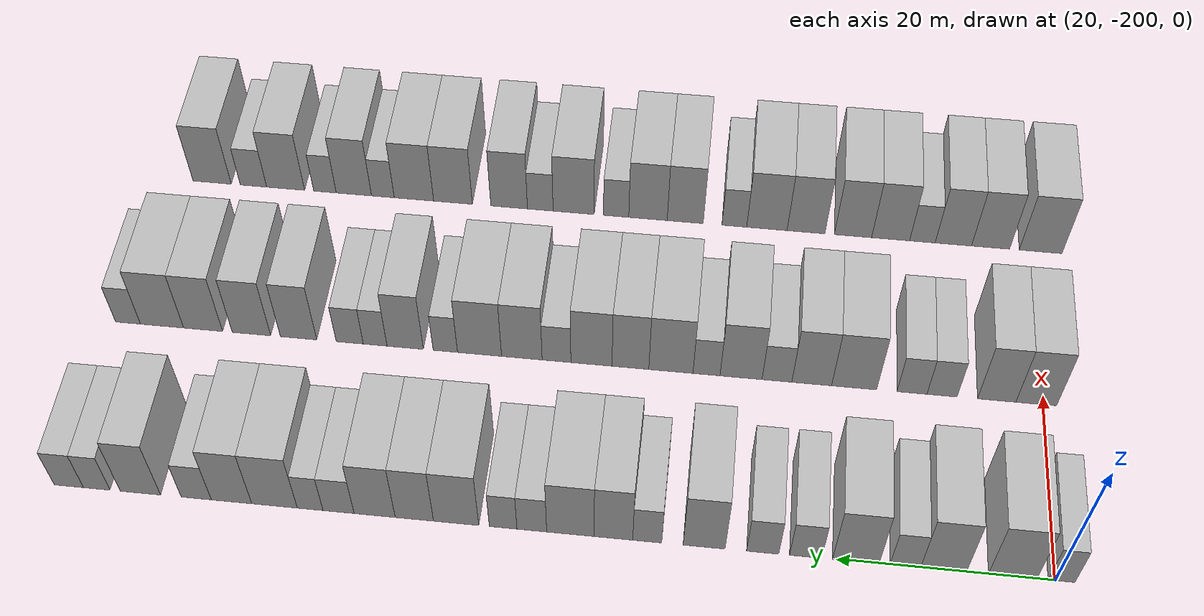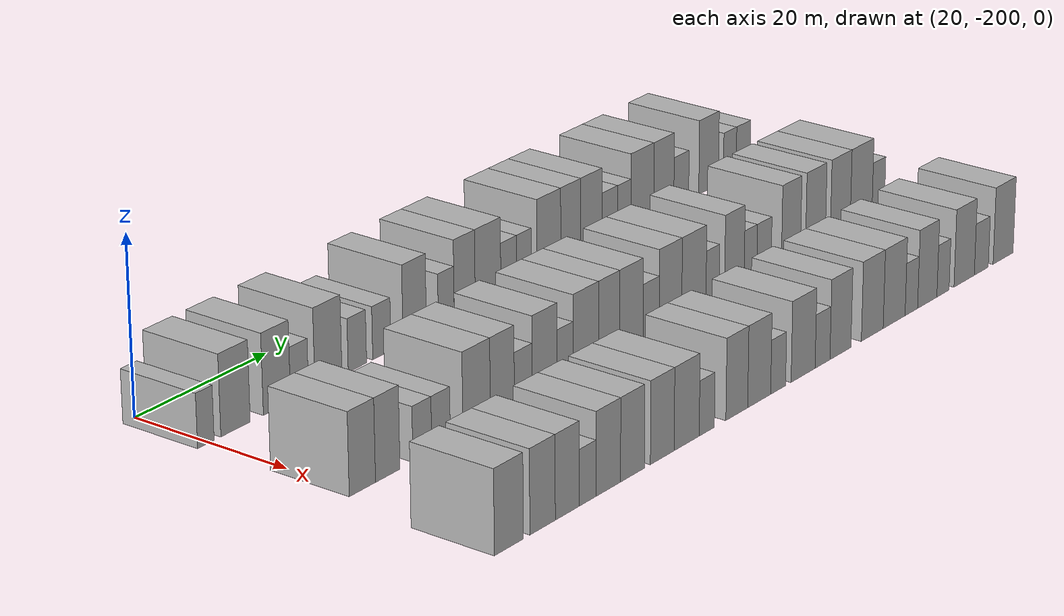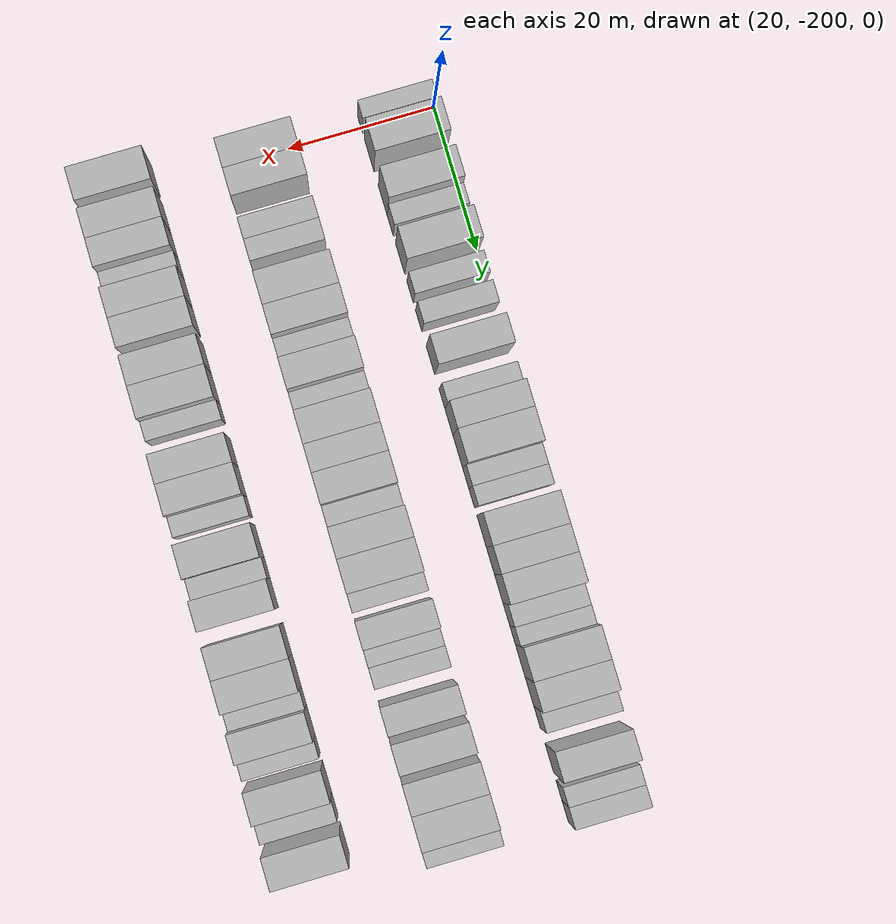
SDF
<sdf version="1.6">
 <world name="default">
  <model name="building_34">
   <static>1</static>
   <pose>25.0000 -200.5659 0 0.000000 0.000000 0.000000</pose>
   <link name="link">
    <pose>0 0 3.00 0 0 0</pose>
    <collision name="collision"><geometry><box><size>10.0000 2.4475 6.0000</size></box></geometry></collision>
    <visual name="visual">
     <cast_shadows>0</cast_shadows>
     <geometry><box><size>10.0000 2.4475 6.0000</size></box></geometry>
     <material>
      <script>
       <uri>model://HANNAS_wall/materials/scripts</uri>
       <uri>model://HANNAS_wall/materials/textures</uri>
       <name>vrc/HANNAS_wall</name>
      </script>
     </material>
    </visual>
   </link>
  </model>
  <model name="building_35">
   <static>1</static>
   <pose>25.0000 -196.1307 0 0.000000 0.000000 0.000000</pose>
   <link name="link">
    <pose>0 0 4.50 0 0 0</pose>
    <collision name="collision"><geometry><box><size>10.0000 4.4228 9.0000</size></box></geometry></collision>
    <visual name="visual">
     <cast_shadows>0</cast_shadows>
     <geometry><box><size>10.0000 4.4228 9.0000</size></box></geometry>
     <material>
      <script>
       <uri>model://HANNAS_wall/materials/scripts</uri>
       <uri>model://HANNAS_wall/materials/textures</uri>
       <name>vrc/HANNAS_wall</name>
      </script>
     </material>
    </visual>
   </link>
  </model>
  <model name="building_36">
   <static>1</static>
   <pose>25.0000 -189.8251 0 0.000000 0.000000 0.000000</pose>
   <link name="link">
    <pose>0 0 4.50 0 0 0</pose>
    <collision name="collision"><geometry><box><size>10.0000 4.1883 9.0000</size></box></geometry></collision>
    <visual name="visual">
     <cast_shadows>0</cast_shadows>
     <geometry><box><size>10.0000 4.1883 9.0000</size></box></geometry>
     <material>
      <script>
       <uri>model://HANNAS_wall/materials/scripts</uri>
       <uri>model://HANNAS_wall/materials/textures</uri>
       <name>vrc/HANNAS_wall</name>
      </script>
     </material>
    </visual>
   </link>
  </model>
  <model name="building_37">
   <static>1</static>
   <pose>25.0000 -186.3270 0 0.000000 0.000000 0.000000</pose>
   <link name="link">
    <pose>0 0 3.00 0 0 0</pose>
    <collision name="collision"><geometry><box><size>10.0000 2.8080 6.0000</size></box></geometry></collision>
    <visual name="visual">
     <cast_shadows>0</cast_shadows>
     <geometry><box><size>10.0000 2.8080 6.0000</size></box></geometry>
     <material>
      <script>
       <uri>model://HANNAS_wall/materials/scripts</uri>
       <uri>model://HANNAS_wall/materials/textures</uri>
       <name>vrc/HANNAS_wall</name>
      </script>
     </material>
    </visual>
   </link>
  </model>
  <model name="building_38">
   <static>1</static>
   <pose>25.0000 -181.7775 0 0.000000 0.000000 0.000000</pose>
   <link name="link">
    <pose>0 0 4.50 0 0 0</pose>
    <collision name="collision"><geometry><box><size>10.0000 4.2909 9.0000</size></box></geometry></collision>
    <visual name="visual">
     <cast_shadows>0</cast_shadows>
     <geometry><box><size>10.0000 4.2909 9.0000</size></box></geometry>
     <material>
      <script>
       <uri>model://HANNAS_wall/materials/scripts</uri>
       <uri>model://HANNAS_wall/materials/textures</uri>
       <name>vrc/HANNAS_wall</name>
      </script>
     </material>
    </visual>
   </link>
  </model>
  <model name="building_39">
   <static>1</static>
   <pose>25.0000 -177.1519 0 0.000000 0.000000 0.000000</pose>
   <link name="link">
    <pose>0 0 3.00 0 0 0</pose>
    <collision name="collision"><geometry><box><size>10.0000 2.9604 6.0000</size></box></geometry></collision>
    <visual name="visual">
     <cast_shadows>0</cast_shadows>
     <geometry><box><size>10.0000 2.9604 6.0000</size></box></geometry>
     <material>
      <script>
       <uri>model://HANNAS_wall/materials/scripts</uri>
       <uri>model://HANNAS_wall/materials/textures</uri>
       <name>vrc/HANNAS_wall</name>
      </script>
     </material>
    </visual>
   </link>
  </model>
  <model name="building_40">
   <static>1</static>
   <pose>25.0000 -173.1831 0 0.000000 0.000000 0.000000</pose>
   <link name="link">
    <pose>0 0 3.00 0 0 0</pose>
    <collision name="collision"><geometry><box><size>10.0000 2.9773 6.0000</size></box></geometry></collision>
    <visual name="visual">
     <cast_shadows>0</cast_shadows>
     <geometry><box><size>10.0000 2.9773 6.0000</size></box></geometry>
     <material>
      <script>
       <uri>model://HANNAS_wall/materials/scripts</uri>
       <uri>model://HANNAS_wall/materials/textures</uri>
       <name>vrc/HANNAS_wall</name>
      </script>
     </material>
    </visual>
   </link>
  </model>
  <model name="building_41">
   <static>1</static>
   <pose>25.0000 -167.7457 0 0.000000 0.000000 0.000000</pose>
   <link name="link">
    <pose>0 0 4.50 0 0 0</pose>
    <collision name="collision"><geometry><box><size>10.0000 3.8975 9.0000</size></box></geometry></collision>
    <visual name="visual">
     <cast_shadows>0</cast_shadows>
     <geometry><box><size>10.0000 3.8975 9.0000</size></box></geometry>
     <material>
      <script>
       <uri>model://HANNAS_wall/materials/scripts</uri>
       <uri>model://HANNAS_wall/materials/textures</uri>
       <name>vrc/HANNAS_wall</name>
      </script>
     </material>
    </visual>
   </link>
  </model>
  <model name="building_42">
   <static>1</static>
   <pose>25.0000 -162.4443 0 0.000000 0.000000 0.000000</pose>
   <link name="link">
    <pose>0 0 3.00 0 0 0</pose>
    <collision name="collision"><geometry><box><size>10.0000 2.7053 6.0000</size></box></geometry></collision>
    <visual name="visual">
     <cast_shadows>0</cast_shadows>
     <geometry><box><size>10.0000 2.7053 6.0000</size></box></geometry>
     <material>
      <script>
       <uri>model://HANNAS_wall/materials/scripts</uri>
       <uri>model://HANNAS_wall/materials/textures</uri>
       <name>vrc/HANNAS_wall</name>
      </script>
     </material>
    </visual>
   </link>
  </model>
  <model name="building_43">
   <static>1</static>
   <pose>25.0000 -159.2857 0 0.000000 0.000000 0.000000</pose>
   <link name="link">
    <pose>0 0 4.50 0 0 0</pose>
    <collision name="collision"><geometry><box><size>10.0000 3.6118 9.0000</size></box></geometry></collision>
    <visual name="visual">
     <cast_shadows>0</cast_shadows>
     <geometry><box><size>10.0000 3.6118 9.0000</size></box></geometry>
     <material>
      <script>
       <uri>model://HANNAS_wall/materials/scripts</uri>
       <uri>model://HANNAS_wall/materials/textures</uri>
       <name>vrc/HANNAS_wall</name>
      </script>
     </material>
    </visual>
   </link>
  </model>
  <model name="building_44">
   <static>1</static>
   <pose>25.0000 -155.2495 0 0.000000 0.000000 0.000000</pose>
   <link name="link">
    <pose>0 0 4.50 0 0 0</pose>
    <collision name="collision"><geometry><box><size>10.0000 4.4606 9.0000</size></box></geometry></collision>
    <visual name="visual">
     <cast_shadows>0</cast_shadows>
     <geometry><box><size>10.0000 4.4606 9.0000</size></box></geometry>
     <material>
      <script>
       <uri>model://HANNAS_wall/materials/scripts</uri>
       <uri>model://HANNAS_wall/materials/textures</uri>
       <name>vrc/HANNAS_wall</name>
      </script>
     </material>
    </visual>
   </link>
  </model>
  <model name="building_45">
   <static>1</static>
   <pose>25.0000 -151.6168 0 0.000000 0.000000 0.000000</pose>
   <link name="link">
    <pose>0 0 3.00 0 0 0</pose>
    <collision name="collision"><geometry><box><size>10.0000 2.8048 6.0000</size></box></geometry></collision>
    <visual name="visual">
     <cast_shadows>0</cast_shadows>
     <geometry><box><size>10.0000 2.8048 6.0000</size></box></geometry>
     <material>
      <script>
       <uri>model://HANNAS_wall/materials/scripts</uri>
       <uri>model://HANNAS_wall/materials/textures</uri>
       <name>vrc/HANNAS_wall</name>
      </script>
     </material>
    </visual>
   </link>
  </model>
  <model name="building_46">
   <static>1</static>
   <pose>25.0000 -148.9130 0 0.000000 0.000000 0.000000</pose>
   <link name="link">
    <pose>0 0 3.00 0 0 0</pose>
    <collision name="collision"><geometry><box><size>10.0000 2.6027 6.0000</size></box></geometry></collision>
    <visual name="visual">
     <cast_shadows>0</cast_shadows>
     <geometry><box><size>10.0000 2.6027 6.0000</size></box></geometry>
     <material>
      <script>
       <uri>model://HANNAS_wall/materials/scripts</uri>
       <uri>model://HANNAS_wall/materials/textures</uri>
       <name>vrc/HANNAS_wall</name>
      </script>
     </material>
    </visual>
   </link>
  </model>
  <model name="building_47">
   <static>1</static>
   <pose>25.0000 -144.4674 0 0.000000 0.000000 0.000000</pose>
   <link name="link">
    <pose>0 0 4.50 0 0 0</pose>
    <collision name="collision"><geometry><box><size>10.0000 4.2885 9.0000</size></box></geometry></collision>
    <visual name="visual">
     <cast_shadows>0</cast_shadows>
     <geometry><box><size>10.0000 4.2885 9.0000</size></box></geometry>
     <material>
      <script>
       <uri>model://HANNAS_wall/materials/scripts</uri>
       <uri>model://HANNAS_wall/materials/textures</uri>
       <name>vrc/HANNAS_wall</name>
      </script>
     </material>
    </visual>
   </link>
  </model>
  <model name="building_48">
   <static>1</static>
   <pose>25.0000 -140.5021 0 0.000000 0.000000 0.000000</pose>
   <link name="link">
    <pose>0 0 4.50 0 0 0</pose>
    <collision name="collision"><geometry><box><size>10.0000 3.6422 9.0000</size></box></geometry></collision>
    <visual name="visual">
     <cast_shadows>0</cast_shadows>
     <geometry><box><size>10.0000 3.6422 9.0000</size></box></geometry>
     <material>
      <script>
       <uri>model://HANNAS_wall/materials/scripts</uri>
       <uri>model://HANNAS_wall/materials/textures</uri>
       <name>vrc/HANNAS_wall</name>
      </script>
     </material>
    </visual>
   </link>
  </model>
  <model name="building_49">
   <static>1</static>
   <pose>25.0000 -136.7236 0 0.000000 0.000000 0.000000</pose>
   <link name="link">
    <pose>0 0 4.50 0 0 0</pose>
    <collision name="collision"><geometry><box><size>10.0000 3.9148 9.0000</size></box></geometry></collision>
    <visual name="visual">
     <cast_shadows>0</cast_shadows>
     <geometry><box><size>10.0000 3.9148 9.0000</size></box></geometry>
     <material>
      <script>
       <uri>model://HANNAS_wall/materials/scripts</uri>
       <uri>model://HANNAS_wall/materials/textures</uri>
       <name>vrc/HANNAS_wall</name>
      </script>
     </material>
    </visual>
   </link>
  </model>
  <model name="building_50">
   <static>1</static>
   <pose>25.0000 -133.2777 0 0.000000 0.000000 0.000000</pose>
   <link name="link">
    <pose>0 0 3.00 0 0 0</pose>
    <collision name="collision"><geometry><box><size>10.0000 2.9769 6.0000</size></box></geometry></collision>
    <visual name="visual">
     <cast_shadows>0</cast_shadows>
     <geometry><box><size>10.0000 2.9769 6.0000</size></box></geometry>
     <material>
      <script>
       <uri>model://HANNAS_wall/materials/scripts</uri>
       <uri>model://HANNAS_wall/materials/textures</uri>
       <name>vrc/HANNAS_wall</name>
      </script>
     </material>
    </visual>
   </link>
  </model>
  <model name="building_51">
   <static>1</static>
   <pose>25.0000 -130.5598 0 0.000000 0.000000 0.000000</pose>
   <link name="link">
    <pose>0 0 3.00 0 0 0</pose>
    <collision name="collision"><geometry><box><size>10.0000 2.4590 6.0000</size></box></geometry></collision>
    <visual name="visual">
     <cast_shadows>0</cast_shadows>
     <geometry><box><size>10.0000 2.4590 6.0000</size></box></geometry>
     <material>
      <script>
       <uri>model://HANNAS_wall/materials/scripts</uri>
       <uri>model://HANNAS_wall/materials/textures</uri>
       <name>vrc/HANNAS_wall</name>
      </script>
     </material>
    </visual>
   </link>
  </model>
  <model name="building_52">
   <static>1</static>
   <pose>25.0000 -127.1387 0 0.000000 0.000000 0.000000</pose>
   <link name="link">
    <pose>0 0 4.50 0 0 0</pose>
    <collision name="collision"><geometry><box><size>10.0000 4.3833 9.0000</size></box></geometry></collision>
    <visual name="visual">
     <cast_shadows>0</cast_shadows>
     <geometry><box><size>10.0000 4.3833 9.0000</size></box></geometry>
     <material>
      <script>
       <uri>model://HANNAS_wall/materials/scripts</uri>
       <uri>model://HANNAS_wall/materials/textures</uri>
       <name>vrc/HANNAS_wall</name>
      </script>
     </material>
    </visual>
   </link>
  </model>
  <model name="building_53">
   <static>1</static>
   <pose>25.0000 -122.9968 0 0.000000 0.000000 0.000000</pose>
   <link name="link">
    <pose>0 0 4.50 0 0 0</pose>
    <collision name="collision"><geometry><box><size>10.0000 3.9005 9.0000</size></box></geometry></collision>
    <visual name="visual">
     <cast_shadows>0</cast_shadows>
     <geometry><box><size>10.0000 3.9005 9.0000</size></box></geometry>
     <material>
      <script>
       <uri>model://HANNAS_wall/materials/scripts</uri>
       <uri>model://HANNAS_wall/materials/textures</uri>
       <name>vrc/HANNAS_wall</name>
      </script>
     </material>
    </visual>
   </link>
  </model>
  <model name="building_54">
   <static>1</static>
   <pose>25.0000 -119.5920 0 0.000000 0.000000 0.000000</pose>
   <link name="link">
    <pose>0 0 3.00 0 0 0</pose>
    <collision name="collision"><geometry><box><size>10.0000 2.9090 6.0000</size></box></geometry></collision>
    <visual name="visual">
     <cast_shadows>0</cast_shadows>
     <geometry><box><size>10.0000 2.9090 6.0000</size></box></geometry>
     <material>
      <script>
       <uri>model://HANNAS_wall/materials/scripts</uri>
       <uri>model://HANNAS_wall/materials/textures</uri>
       <name>vrc/HANNAS_wall</name>
      </script>
     </material>
    </visual>
   </link>
  </model>
  <model name="building_55">
   <static>1</static>
   <pose>25.0000 -114.1815 0 0.000000 0.000000 0.000000</pose>
   <link name="link">
    <pose>0 0 4.50 0 0 0</pose>
    <collision name="collision"><geometry><box><size>10.0000 3.9120 9.0000</size></box></geometry></collision>
    <visual name="visual">
     <cast_shadows>0</cast_shadows>
     <geometry><box><size>10.0000 3.9120 9.0000</size></box></geometry>
     <material>
      <script>
       <uri>model://HANNAS_wall/materials/scripts</uri>
       <uri>model://HANNAS_wall/materials/textures</uri>
       <name>vrc/HANNAS_wall</name>
      </script>
     </material>
    </visual>
   </link>
  </model>
  <model name="building_56">
   <static>1</static>
   <pose>25.0000 -109.9338 0 0.000000 0.000000 0.000000</pose>
   <link name="link">
    <pose>0 0 3.00 0 0 0</pose>
    <collision name="collision"><geometry><box><size>10.0000 2.5834 6.0000</size></box></geometry></collision>
    <visual name="visual">
     <cast_shadows>0</cast_shadows>
     <geometry><box><size>10.0000 2.5834 6.0000</size></box></geometry>
     <material>
      <script>
       <uri>model://HANNAS_wall/materials/scripts</uri>
       <uri>model://HANNAS_wall/materials/textures</uri>
       <name>vrc/HANNAS_wall</name>
      </script>
     </material>
    </visual>
   </link>
  </model>
  <model name="building_57">
   <static>1</static>
   <pose>25.0000 -107.2208 0 0.000000 0.000000 0.000000</pose>
   <link name="link">
    <pose>0 0 3.00 0 0 0</pose>
    <collision name="collision"><geometry><box><size>10.0000 2.8428 6.0000</size></box></geometry></collision>
    <visual name="visual">
     <cast_shadows>0</cast_shadows>
     <geometry><box><size>10.0000 2.8428 6.0000</size></box></geometry>
     <material>
      <script>
       <uri>model://HANNAS_wall/materials/scripts</uri>
       <uri>model://HANNAS_wall/materials/textures</uri>
       <name>vrc/HANNAS_wall</name>
      </script>
     </material>
    </visual>
   </link>
  </model>
  <model name="building_196">
   <static>1</static>
   <pose>44.0000 -199.2481 0 0.000000 0.000000 0.000000</pose>
   <link name="link">
    <pose>0 0 4.50 0 0 0</pose>
    <collision name="collision"><geometry><box><size>10.0000 3.9664 9.0000</size></box></geometry></collision>
    <visual name="visual">
     <cast_shadows>0</cast_shadows>
     <geometry><box><size>10.0000 3.9664 9.0000</size></box></geometry>
     <material>
      <script>
       <uri>model://HANNAS_wall/materials/scripts</uri>
       <uri>model://HANNAS_wall/materials/textures</uri>
       <name>vrc/HANNAS_wall</name>
      </script>
     </material>
    </visual>
   </link>
  </model>
  <model name="building_197">
   <static>1</static>
   <pose>44.0000 -195.3941 0 0.000000 0.000000 0.000000</pose>
   <link name="link">
    <pose>0 0 4.50 0 0 0</pose>
    <collision name="collision"><geometry><box><size>10.0000 3.7415 9.0000</size></box></geometry></collision>
    <visual name="visual">
     <cast_shadows>0</cast_shadows>
     <geometry><box><size>10.0000 3.7415 9.0000</size></box></geometry>
     <material>
      <script>
       <uri>model://HANNAS_wall/materials/scripts</uri>
       <uri>model://HANNAS_wall/materials/textures</uri>
       <name>vrc/HANNAS_wall</name>
      </script>
     </material>
    </visual>
   </link>
  </model>
  <model name="building_198">
   <static>1</static>
   <pose>44.0000 -190.0451 0 0.000000 0.000000 0.000000</pose>
   <link name="link">
    <pose>0 0 3.00 0 0 0</pose>
    <collision name="collision"><geometry><box><size>10.0000 2.9566 6.0000</size></box></geometry></collision>
    <visual name="visual">
     <cast_shadows>0</cast_shadows>
     <geometry><box><size>10.0000 2.9566 6.0000</size></box></geometry>
     <material>
      <script>
       <uri>model://HANNAS_wall/materials/scripts</uri>
       <uri>model://HANNAS_wall/materials/textures</uri>
       <name>vrc/HANNAS_wall</name>
      </script>
     </material>
    </visual>
   </link>
  </model>
  <model name="building_199">
   <static>1</static>
   <pose>44.0000 -187.0938 0 0.000000 0.000000 0.000000</pose>
   <link name="link">
    <pose>0 0 3.00 0 0 0</pose>
    <collision name="collision"><geometry><box><size>10.0000 2.9459 6.0000</size></box></geometry></collision>
    <visual name="visual">
     <cast_shadows>0</cast_shadows>
     <geometry><box><size>10.0000 2.9459 6.0000</size></box></geometry>
     <material>
      <script>
       <uri>model://HANNAS_wall/materials/scripts</uri>
       <uri>model://HANNAS_wall/materials/textures</uri>
       <name>vrc/HANNAS_wall</name>
      </script>
     </material>
    </visual>
   </link>
  </model>
  <model name="building_200">
   <static>1</static>
   <pose>44.0000 -181.4002 0 0.000000 0.000000 0.000000</pose>
   <link name="link">
    <pose>0 0 4.50 0 0 0</pose>
    <collision name="collision"><geometry><box><size>10.0000 4.4414 9.0000</size></box></geometry></collision>
    <visual name="visual">
     <cast_shadows>0</cast_shadows>
     <geometry><box><size>10.0000 4.4414 9.0000</size></box></geometry>
     <material>
      <script>
       <uri>model://HANNAS_wall/materials/scripts</uri>
       <uri>model://HANNAS_wall/materials/textures</uri>
       <name>vrc/HANNAS_wall</name>
      </script>
     </material>
    </visual>
   </link>
  </model>
  <model name="building_201">
   <static>1</static>
   <pose>44.0000 -177.2103 0 0.000000 0.000000 0.000000</pose>
   <link name="link">
    <pose>0 0 4.50 0 0 0</pose>
    <collision name="collision"><geometry><box><size>10.0000 3.9384 9.0000</size></box></geometry></collision>
    <visual name="visual">
     <cast_shadows>0</cast_shadows>
     <geometry><box><size>10.0000 3.9384 9.0000</size></box></geometry>
     <material>
      <script>
       <uri>model://HANNAS_wall/materials/scripts</uri>
       <uri>model://HANNAS_wall/materials/textures</uri>
       <name>vrc/HANNAS_wall</name>
      </script>
     </material>
    </visual>
   </link>
  </model>
  <model name="building_202">
   <static>1</static>
   <pose>44.0000 -173.7612 0 0.000000 0.000000 0.000000</pose>
   <link name="link">
    <pose>0 0 3.00 0 0 0</pose>
    <collision name="collision"><geometry><box><size>10.0000 2.9598 6.0000</size></box></geometry></collision>
    <visual name="visual">
     <cast_shadows>0</cast_shadows>
     <geometry><box><size>10.0000 2.9598 6.0000</size></box></geometry>
     <material>
      <script>
       <uri>model://HANNAS_wall/materials/scripts</uri>
       <uri>model://HANNAS_wall/materials/textures</uri>
       <name>vrc/HANNAS_wall</name>
      </script>
     </material>
    </visual>
   </link>
  </model>
  <model name="building_203">
   <static>1</static>
   <pose>44.0000 -170.1907 0 0.000000 0.000000 0.000000</pose>
   <link name="link">
    <pose>0 0 4.50 0 0 0</pose>
    <collision name="collision"><geometry><box><size>10.0000 4.1811 9.0000</size></box></geometry></collision>
    <visual name="visual">
     <cast_shadows>0</cast_shadows>
     <geometry><box><size>10.0000 4.1811 9.0000</size></box></geometry>
     <material>
      <script>
       <uri>model://HANNAS_wall/materials/scripts</uri>
       <uri>model://HANNAS_wall/materials/textures</uri>
       <name>vrc/HANNAS_wall</name>
      </script>
     </material>
    </visual>
   </link>
  </model>
  <model name="building_204">
   <static>1</static>
   <pose>44.0000 -166.7505 0 0.000000 0.000000 0.000000</pose>
   <link name="link">
    <pose>0 0 3.00 0 0 0</pose>
    <collision name="collision"><geometry><box><size>10.0000 2.6992 6.0000</size></box></geometry></collision>
    <visual name="visual">
     <cast_shadows>0</cast_shadows>
     <geometry><box><size>10.0000 2.6992 6.0000</size></box></geometry>
     <material>
      <script>
       <uri>model://HANNAS_wall/materials/scripts</uri>
       <uri>model://HANNAS_wall/materials/textures</uri>
       <name>vrc/HANNAS_wall</name>
      </script>
     </material>
    </visual>
   </link>
  </model>
  <model name="building_205">
   <static>1</static>
   <pose>44.0000 -163.1941 0 0.000000 0.000000 0.000000</pose>
   <link name="link">
    <pose>0 0 4.50 0 0 0</pose>
    <collision name="collision"><geometry><box><size>10.0000 4.4136 9.0000</size></box></geometry></collision>
    <visual name="visual">
     <cast_shadows>0</cast_shadows>
     <geometry><box><size>10.0000 4.4136 9.0000</size></box></geometry>
     <material>
      <script>
       <uri>model://HANNAS_wall/materials/scripts</uri>
       <uri>model://HANNAS_wall/materials/textures</uri>
       <name>vrc/HANNAS_wall</name>
      </script>
     </material>
    </visual>
   </link>
  </model>
  <model name="building_206">
   <static>1</static>
   <pose>44.0000 -159.1384 0 0.000000 0.000000 0.000000</pose>
   <link name="link">
    <pose>0 0 4.50 0 0 0</pose>
    <collision name="collision"><geometry><box><size>10.0000 3.6980 9.0000</size></box></geometry></collision>
    <visual name="visual">
     <cast_shadows>0</cast_shadows>
     <geometry><box><size>10.0000 3.6980 9.0000</size></box></geometry>
     <material>
      <script>
       <uri>model://HANNAS_wall/materials/scripts</uri>
       <uri>model://HANNAS_wall/materials/textures</uri>
       <name>vrc/HANNAS_wall</name>
      </script>
     </material>
    </visual>
   </link>
  </model>
  <model name="building_207">
   <static>1</static>
   <pose>44.0000 -155.2241 0 0.000000 0.000000 0.000000</pose>
   <link name="link">
    <pose>0 0 4.50 0 0 0</pose>
    <collision name="collision"><geometry><box><size>10.0000 4.1306 9.0000</size></box></geometry></collision>
    <visual name="visual">
     <cast_shadows>0</cast_shadows>
     <geometry><box><size>10.0000 4.1306 9.0000</size></box></geometry>
     <material>
      <script>
       <uri>model://HANNAS_wall/materials/scripts</uri>
       <uri>model://HANNAS_wall/materials/textures</uri>
       <name>vrc/HANNAS_wall</name>
      </script>
     </material>
    </visual>
   </link>
  </model>
  <model name="building_208">
   <static>1</static>
   <pose>44.0000 -151.7095 0 0.000000 0.000000 0.000000</pose>
   <link name="link">
    <pose>0 0 3.00 0 0 0</pose>
    <collision name="collision"><geometry><box><size>10.0000 2.8986 6.0000</size></box></geometry></collision>
    <visual name="visual">
     <cast_shadows>0</cast_shadows>
     <geometry><box><size>10.0000 2.8986 6.0000</size></box></geometry>
     <material>
      <script>
       <uri>model://HANNAS_wall/materials/scripts</uri>
       <uri>model://HANNAS_wall/materials/textures</uri>
       <name>vrc/HANNAS_wall</name>
      </script>
     </material>
    </visual>
   </link>
  </model>
  <model name="building_209">
   <static>1</static>
   <pose>44.0000 -148.2074 0 0.000000 0.000000 0.000000</pose>
   <link name="link">
    <pose>0 0 4.50 0 0 0</pose>
    <collision name="collision"><geometry><box><size>10.0000 4.1056 9.0000</size></box></geometry></collision>
    <visual name="visual">
     <cast_shadows>0</cast_shadows>
     <geometry><box><size>10.0000 4.1056 9.0000</size></box></geometry>
     <material>
      <script>
       <uri>model://HANNAS_wall/materials/scripts</uri>
       <uri>model://HANNAS_wall/materials/textures</uri>
       <name>vrc/HANNAS_wall</name>
      </script>
     </material>
    </visual>
   </link>
  </model>
  <model name="building_210">
   <static>1</static>
   <pose>44.0000 -143.9197 0 0.000000 0.000000 0.000000</pose>
   <link name="link">
    <pose>0 0 4.50 0 0 0</pose>
    <collision name="collision"><geometry><box><size>10.0000 4.4698 9.0000</size></box></geometry></collision>
    <visual name="visual">
     <cast_shadows>0</cast_shadows>
     <geometry><box><size>10.0000 4.4698 9.0000</size></box></geometry>
     <material>
      <script>
       <uri>model://HANNAS_wall/materials/scripts</uri>
       <uri>model://HANNAS_wall/materials/textures</uri>
       <name>vrc/HANNAS_wall</name>
      </script>
     </material>
    </visual>
   </link>
  </model>
  <model name="building_211">
   <static>1</static>
   <pose>44.0000 -140.4469 0 0.000000 0.000000 0.000000</pose>
   <link name="link">
    <pose>0 0 3.00 0 0 0</pose>
    <collision name="collision"><geometry><box><size>10.0000 2.4758 6.0000</size></box></geometry></collision>
    <visual name="visual">
     <cast_shadows>0</cast_shadows>
     <geometry><box><size>10.0000 2.4758 6.0000</size></box></geometry>
     <material>
      <script>
       <uri>model://HANNAS_wall/materials/scripts</uri>
       <uri>model://HANNAS_wall/materials/textures</uri>
       <name>vrc/HANNAS_wall</name>
      </script>
     </material>
    </visual>
   </link>
  </model>
  <model name="building_212">
   <static>1</static>
   <pose>44.0000 -136.3566 0 0.000000 0.000000 0.000000</pose>
   <link name="link">
    <pose>0 0 4.50 0 0 0</pose>
    <collision name="collision"><geometry><box><size>10.0000 3.7048 9.0000</size></box></geometry></collision>
    <visual name="visual">
     <cast_shadows>0</cast_shadows>
     <geometry><box><size>10.0000 3.7048 9.0000</size></box></geometry>
     <material>
      <script>
       <uri>model://HANNAS_wall/materials/scripts</uri>
       <uri>model://HANNAS_wall/materials/textures</uri>
       <name>vrc/HANNAS_wall</name>
      </script>
     </material>
    </visual>
   </link>
  </model>
  <model name="building_213">
   <static>1</static>
   <pose>44.0000 -133.2910 0 0.000000 0.000000 0.000000</pose>
   <link name="link">
    <pose>0 0 3.00 0 0 0</pose>
    <collision name="collision"><geometry><box><size>10.0000 2.4265 6.0000</size></box></geometry></collision>
    <visual name="visual">
     <cast_shadows>0</cast_shadows>
     <geometry><box><size>10.0000 2.4265 6.0000</size></box></geometry>
     <material>
      <script>
       <uri>model://HANNAS_wall/materials/scripts</uri>
       <uri>model://HANNAS_wall/materials/textures</uri>
       <name>vrc/HANNAS_wall</name>
      </script>
     </material>
    </visual>
   </link>
  </model>
  <model name="building_214">
   <static>1</static>
   <pose>44.0000 -130.6899 0 0.000000 0.000000 0.000000</pose>
   <link name="link">
    <pose>0 0 3.00 0 0 0</pose>
    <collision name="collision"><geometry><box><size>10.0000 2.7758 6.0000</size></box></geometry></collision>
    <visual name="visual">
     <cast_shadows>0</cast_shadows>
     <geometry><box><size>10.0000 2.7758 6.0000</size></box></geometry>
     <material>
      <script>
       <uri>model://HANNAS_wall/materials/scripts</uri>
       <uri>model://HANNAS_wall/materials/textures</uri>
       <name>vrc/HANNAS_wall</name>
      </script>
     </material>
    </visual>
   </link>
  </model>
  <model name="building_215">
   <static>1</static>
   <pose>44.0000 -125.4326 0 0.000000 0.000000 0.000000</pose>
   <link name="link">
    <pose>0 0 4.50 0 0 0</pose>
    <collision name="collision"><geometry><box><size>10.0000 3.7388 9.0000</size></box></geometry></collision>
    <visual name="visual">
     <cast_shadows>0</cast_shadows>
     <geometry><box><size>10.0000 3.7388 9.0000</size></box></geometry>
     <material>
      <script>
       <uri>model://HANNAS_wall/materials/scripts</uri>
       <uri>model://HANNAS_wall/materials/textures</uri>
       <name>vrc/HANNAS_wall</name>
      </script>
     </material>
    </visual>
   </link>
  </model>
  <model name="building_216">
   <static>1</static>
   <pose>44.0000 -120.5817 0 0.000000 0.000000 0.000000</pose>
   <link name="link">
    <pose>0 0 4.50 0 0 0</pose>
    <collision name="collision"><geometry><box><size>10.0000 3.9630 9.0000</size></box></geometry></collision>
    <visual name="visual">
     <cast_shadows>0</cast_shadows>
     <geometry><box><size>10.0000 3.9630 9.0000</size></box></geometry>
     <material>
      <script>
       <uri>model://HANNAS_wall/materials/scripts</uri>
       <uri>model://HANNAS_wall/materials/textures</uri>
       <name>vrc/HANNAS_wall</name>
      </script>
     </material>
    </visual>
   </link>
  </model>
  <model name="building_217">
   <static>1</static>
   <pose>44.0000 -115.5786 0 0.000000 0.000000 0.000000</pose>
   <link name="link">
    <pose>0 0 4.50 0 0 0</pose>
    <collision name="collision"><geometry><box><size>10.0000 4.0433 9.0000</size></box></geometry></collision>
    <visual name="visual">
     <cast_shadows>0</cast_shadows>
     <geometry><box><size>10.0000 4.0433 9.0000</size></box></geometry>
     <material>
      <script>
       <uri>model://HANNAS_wall/materials/scripts</uri>
       <uri>model://HANNAS_wall/materials/textures</uri>
       <name>vrc/HANNAS_wall</name>
      </script>
     </material>
    </visual>
   </link>
  </model>
  <model name="building_218">
   <static>1</static>
   <pose>44.0000 -111.3147 0 0.000000 0.000000 0.000000</pose>
   <link name="link">
    <pose>0 0 4.50 0 0 0</pose>
    <collision name="collision"><geometry><box><size>10.0000 4.4845 9.0000</size></box></geometry></collision>
    <visual name="visual">
     <cast_shadows>0</cast_shadows>
     <geometry><box><size>10.0000 4.4845 9.0000</size></box></geometry>
     <material>
      <script>
       <uri>model://HANNAS_wall/materials/scripts</uri>
       <uri>model://HANNAS_wall/materials/textures</uri>
       <name>vrc/HANNAS_wall</name>
      </script>
     </material>
    </visual>
   </link>
  </model>
  <model name="building_219">
   <static>1</static>
   <pose>44.0000 -107.7746 0 0.000000 0.000000 0.000000</pose>
   <link name="link">
    <pose>0 0 3.00 0 0 0</pose>
    <collision name="collision"><geometry><box><size>10.0000 2.5955 6.0000</size></box></geometry></collision>
    <visual name="visual">
     <cast_shadows>0</cast_shadows>
     <geometry><box><size>10.0000 2.5955 6.0000</size></box></geometry>
     <material>
      <script>
       <uri>model://HANNAS_wall/materials/scripts</uri>
       <uri>model://HANNAS_wall/materials/textures</uri>
       <name>vrc/HANNAS_wall</name>
      </script>
     </material>
    </visual>
   </link>
  </model>
  <model name="building_372">
   <static>1</static>
   <pose>63.0000 -200.6848 0 0.000000 0.000000 0.000000</pose>
   <link name="link">
    <pose>0 0 4.50 0 0 0</pose>
    <collision name="collision"><geometry><box><size>10.0000 4.4423 9.0000</size></box></geometry></collision>
    <visual name="visual">
     <cast_shadows>0</cast_shadows>
     <geometry><box><size>10.0000 4.4423 9.0000</size></box></geometry>
     <material>
      <script>
       <uri>model://HANNAS_wall/materials/scripts</uri>
       <uri>model://HANNAS_wall/materials/textures</uri>
       <name>vrc/HANNAS_wall</name>
      </script>
     </material>
    </visual>
   </link>
  </model>
  <model name="building_373">
   <static>1</static>
   <pose>63.0000 -195.4769 0 0.000000 0.000000 0.000000</pose>
   <link name="link">
    <pose>0 0 4.50 0 0 0</pose>
    <collision name="collision"><geometry><box><size>10.0000 3.9736 9.0000</size></box></geometry></collision>
    <visual name="visual">
     <cast_shadows>0</cast_shadows>
     <geometry><box><size>10.0000 3.9736 9.0000</size></box></geometry>
     <material>
      <script>
       <uri>model://HANNAS_wall/materials/scripts</uri>
       <uri>model://HANNAS_wall/materials/textures</uri>
       <name>vrc/HANNAS_wall</name>
      </script>
     </material>
    </visual>
   </link>
  </model>
  <model name="building_374">
   <static>1</static>
   <pose>63.0000 -191.5889 0 0.000000 0.000000 0.000000</pose>
   <link name="link">
    <pose>0 0 4.50 0 0 0</pose>
    <collision name="collision"><geometry><box><size>10.0000 3.8023 9.0000</size></box></geometry></collision>
    <visual name="visual">
     <cast_shadows>0</cast_shadows>
     <geometry><box><size>10.0000 3.8023 9.0000</size></box></geometry>
     <material>
      <script>
       <uri>model://HANNAS_wall/materials/scripts</uri>
       <uri>model://HANNAS_wall/materials/textures</uri>
       <name>vrc/HANNAS_wall</name>
      </script>
     </material>
    </visual>
   </link>
  </model>
  <model name="building_375">
   <static>1</static>
   <pose>63.0000 -188.3479 0 0.000000 0.000000 0.000000</pose>
   <link name="link">
    <pose>0 0 3.00 0 0 0</pose>
    <collision name="collision"><geometry><box><size>10.0000 2.6796 6.0000</size></box></geometry></collision>
    <visual name="visual">
     <cast_shadows>0</cast_shadows>
     <geometry><box><size>10.0000 2.6796 6.0000</size></box></geometry>
     <material>
      <script>
       <uri>model://HANNAS_wall/materials/scripts</uri>
       <uri>model://HANNAS_wall/materials/textures</uri>
       <name>vrc/HANNAS_wall</name>
      </script>
     </material>
    </visual>
   </link>
  </model>
  <model name="building_376">
   <static>1</static>
   <pose>63.0000 -185.0133 0 0.000000 0.000000 0.000000</pose>
   <link name="link">
    <pose>0 0 4.50 0 0 0</pose>
    <collision name="collision"><geometry><box><size>10.0000 3.9896 9.0000</size></box></geometry></collision>
    <visual name="visual">
     <cast_shadows>0</cast_shadows>
     <geometry><box><size>10.0000 3.9896 9.0000</size></box></geometry>
     <material>
      <script>
       <uri>model://HANNAS_wall/materials/scripts</uri>
       <uri>model://HANNAS_wall/materials/textures</uri>
       <name>vrc/HANNAS_wall</name>
      </script>
     </material>
    </visual>
   </link>
  </model>
  <model name="building_377">
   <static>1</static>
   <pose>63.0000 -181.0561 0 0.000000 0.000000 0.000000</pose>
   <link name="link">
    <pose>0 0 4.50 0 0 0</pose>
    <collision name="collision"><geometry><box><size>10.0000 3.9249 9.0000</size></box></geometry></collision>
    <visual name="visual">
     <cast_shadows>0</cast_shadows>
     <geometry><box><size>10.0000 3.9249 9.0000</size></box></geometry>
     <material>
      <script>
       <uri>model://HANNAS_wall/materials/scripts</uri>
       <uri>model://HANNAS_wall/materials/textures</uri>
       <name>vrc/HANNAS_wall</name>
      </script>
     </material>
    </visual>
   </link>
  </model>
  <model name="building_378">
   <static>1</static>
   <pose>63.0000 -176.0956 0 0.000000 0.000000 0.000000</pose>
   <link name="link">
    <pose>0 0 4.50 0 0 0</pose>
    <collision name="collision"><geometry><box><size>10.0000 3.9960 9.0000</size></box></geometry></collision>
    <visual name="visual">
     <cast_shadows>0</cast_shadows>
     <geometry><box><size>10.0000 3.9960 9.0000</size></box></geometry>
     <material>
      <script>
       <uri>model://HANNAS_wall/materials/scripts</uri>
       <uri>model://HANNAS_wall/materials/textures</uri>
       <name>vrc/HANNAS_wall</name>
      </script>
     </material>
    </visual>
   </link>
  </model>
  <model name="building_379">
   <static>1</static>
   <pose>63.0000 -171.9547 0 0.000000 0.000000 0.000000</pose>
   <link name="link">
    <pose>0 0 4.50 0 0 0</pose>
    <collision name="collision"><geometry><box><size>10.0000 4.2859 9.0000</size></box></geometry></collision>
    <visual name="visual">
     <cast_shadows>0</cast_shadows>
     <geometry><box><size>10.0000 4.2859 9.0000</size></box></geometry>
     <material>
      <script>
       <uri>model://HANNAS_wall/materials/scripts</uri>
       <uri>model://HANNAS_wall/materials/textures</uri>
       <name>vrc/HANNAS_wall</name>
      </script>
     </material>
    </visual>
   </link>
  </model>
  <model name="building_380">
   <static>1</static>
   <pose>63.0000 -168.4986 0 0.000000 0.000000 0.000000</pose>
   <link name="link">
    <pose>0 0 3.00 0 0 0</pose>
    <collision name="collision"><geometry><box><size>10.0000 2.6263 6.0000</size></box></geometry></collision>
    <visual name="visual">
     <cast_shadows>0</cast_shadows>
     <geometry><box><size>10.0000 2.6263 6.0000</size></box></geometry>
     <material>
      <script>
       <uri>model://HANNAS_wall/materials/scripts</uri>
       <uri>model://HANNAS_wall/materials/textures</uri>
       <name>vrc/HANNAS_wall</name>
      </script>
     </material>
    </visual>
   </link>
  </model>
  <model name="building_381">
   <static>1</static>
   <pose>63.0000 -163.2655 0 0.000000 0.000000 0.000000</pose>
   <link name="link">
    <pose>0 0 4.50 0 0 0</pose>
    <collision name="collision"><geometry><box><size>10.0000 3.8398 9.0000</size></box></geometry></collision>
    <visual name="visual">
     <cast_shadows>0</cast_shadows>
     <geometry><box><size>10.0000 3.8398 9.0000</size></box></geometry>
     <material>
      <script>
       <uri>model://HANNAS_wall/materials/scripts</uri>
       <uri>model://HANNAS_wall/materials/textures</uri>
       <name>vrc/HANNAS_wall</name>
      </script>
     </material>
    </visual>
   </link>
  </model>
  <model name="building_382">
   <static>1</static>
   <pose>63.0000 -159.2899 0 0.000000 0.000000 0.000000</pose>
   <link name="link">
    <pose>0 0 4.50 0 0 0</pose>
    <collision name="collision"><geometry><box><size>10.0000 4.1115 9.0000</size></box></geometry></collision>
    <visual name="visual">
     <cast_shadows>0</cast_shadows>
     <geometry><box><size>10.0000 4.1115 9.0000</size></box></geometry>
     <material>
      <script>
       <uri>model://HANNAS_wall/materials/scripts</uri>
       <uri>model://HANNAS_wall/materials/textures</uri>
       <name>vrc/HANNAS_wall</name>
      </script>
     </material>
    </visual>
   </link>
  </model>
  <model name="building_383">
   <static>1</static>
   <pose>63.0000 -155.8807 0 0.000000 0.000000 0.000000</pose>
   <link name="link">
    <pose>0 0 3.00 0 0 0</pose>
    <collision name="collision"><geometry><box><size>10.0000 2.7068 6.0000</size></box></geometry></collision>
    <visual name="visual">
     <cast_shadows>0</cast_shadows>
     <geometry><box><size>10.0000 2.7068 6.0000</size></box></geometry>
     <material>
      <script>
       <uri>model://HANNAS_wall/materials/scripts</uri>
       <uri>model://HANNAS_wall/materials/textures</uri>
       <name>vrc/HANNAS_wall</name>
      </script>
     </material>
    </visual>
   </link>
  </model>
  <model name="building_384">
   <static>1</static>
   <pose>63.0000 -151.3194 0 0.000000 0.000000 0.000000</pose>
   <link name="link">
    <pose>0 0 4.50 0 0 0</pose>
    <collision name="collision"><geometry><box><size>10.0000 4.4159 9.0000</size></box></geometry></collision>
    <visual name="visual">
     <cast_shadows>0</cast_shadows>
     <geometry><box><size>10.0000 4.4159 9.0000</size></box></geometry>
     <material>
      <script>
       <uri>model://HANNAS_wall/materials/scripts</uri>
       <uri>model://HANNAS_wall/materials/textures</uri>
       <name>vrc/HANNAS_wall</name>
      </script>
     </material>
    </visual>
   </link>
  </model>
  <model name="building_385">
   <static>1</static>
   <pose>63.0000 -147.7268 0 0.000000 0.000000 0.000000</pose>
   <link name="link">
    <pose>0 0 3.00 0 0 0</pose>
    <collision name="collision"><geometry><box><size>10.0000 2.7693 6.0000</size></box></geometry></collision>
    <visual name="visual">
     <cast_shadows>0</cast_shadows>
     <geometry><box><size>10.0000 2.7693 6.0000</size></box></geometry>
     <material>
      <script>
       <uri>model://HANNAS_wall/materials/scripts</uri>
       <uri>model://HANNAS_wall/materials/textures</uri>
       <name>vrc/HANNAS_wall</name>
      </script>
     </material>
    </visual>
   </link>
  </model>
  <model name="building_386">
   <static>1</static>
   <pose>63.0000 -144.3644 0 0.000000 0.000000 0.000000</pose>
   <link name="link">
    <pose>0 0 4.50 0 0 0</pose>
    <collision name="collision"><geometry><box><size>10.0000 3.9553 9.0000</size></box></geometry></collision>
    <visual name="visual">
     <cast_shadows>0</cast_shadows>
     <geometry><box><size>10.0000 3.9553 9.0000</size></box></geometry>
     <material>
      <script>
       <uri>model://HANNAS_wall/materials/scripts</uri>
       <uri>model://HANNAS_wall/materials/textures</uri>
       <name>vrc/HANNAS_wall</name>
      </script>
     </material>
    </visual>
   </link>
  </model>
  <model name="building_387">
   <static>1</static>
   <pose>63.0000 -138.2850 0 0.000000 0.000000 0.000000</pose>
   <link name="link">
    <pose>0 0 4.50 0 0 0</pose>
    <collision name="collision"><geometry><box><size>10.0000 4.2036 9.0000</size></box></geometry></collision>
    <visual name="visual">
     <cast_shadows>0</cast_shadows>
     <geometry><box><size>10.0000 4.2036 9.0000</size></box></geometry>
     <material>
      <script>
       <uri>model://HANNAS_wall/materials/scripts</uri>
       <uri>model://HANNAS_wall/materials/textures</uri>
       <name>vrc/HANNAS_wall</name>
      </script>
     </material>
    </visual>
   </link>
  </model>
  <model name="building_388">
   <static>1</static>
   <pose>63.0000 -134.0377 0 0.000000 0.000000 0.000000</pose>
   <link name="link">
    <pose>0 0 4.50 0 0 0</pose>
    <collision name="collision"><geometry><box><size>10.0000 4.2909 9.0000</size></box></geometry></collision>
    <visual name="visual">
     <cast_shadows>0</cast_shadows>
     <geometry><box><size>10.0000 4.2909 9.0000</size></box></geometry>
     <material>
      <script>
       <uri>model://HANNAS_wall/materials/scripts</uri>
       <uri>model://HANNAS_wall/materials/textures</uri>
       <name>vrc/HANNAS_wall</name>
      </script>
     </material>
    </visual>
   </link>
  </model>
  <model name="building_389">
   <static>1</static>
   <pose>63.0000 -130.6541 0 0.000000 0.000000 0.000000</pose>
   <link name="link">
    <pose>0 0 3.00 0 0 0</pose>
    <collision name="collision"><geometry><box><size>10.0000 2.4764 6.0000</size></box></geometry></collision>
    <visual name="visual">
     <cast_shadows>0</cast_shadows>
     <geometry><box><size>10.0000 2.4764 6.0000</size></box></geometry>
     <material>
      <script>
       <uri>model://HANNAS_wall/materials/scripts</uri>
       <uri>model://HANNAS_wall/materials/textures</uri>
       <name>vrc/HANNAS_wall</name>
      </script>
     </material>
    </visual>
   </link>
  </model>
  <model name="building_390">
   <static>1</static>
   <pose>63.0000 -127.4836 0 0.000000 0.000000 0.000000</pose>
   <link name="link">
    <pose>0 0 4.50 0 0 0</pose>
    <collision name="collision"><geometry><box><size>10.0000 3.8646 9.0000</size></box></geometry></collision>
    <visual name="visual">
     <cast_shadows>0</cast_shadows>
     <geometry><box><size>10.0000 3.8646 9.0000</size></box></geometry>
     <material>
      <script>
       <uri>model://HANNAS_wall/materials/scripts</uri>
       <uri>model://HANNAS_wall/materials/textures</uri>
       <name>vrc/HANNAS_wall</name>
      </script>
     </material>
    </visual>
   </link>
  </model>
  <model name="building_391">
   <static>1</static>
   <pose>63.0000 -124.3206 0 0.000000 0.000000 0.000000</pose>
   <link name="link">
    <pose>0 0 3.00 0 0 0</pose>
    <collision name="collision"><geometry><box><size>10.0000 2.4614 6.0000</size></box></geometry></collision>
    <visual name="visual">
     <cast_shadows>0</cast_shadows>
     <geometry><box><size>10.0000 2.4614 6.0000</size></box></geometry>
     <material>
      <script>
       <uri>model://HANNAS_wall/materials/scripts</uri>
       <uri>model://HANNAS_wall/materials/textures</uri>
       <name>vrc/HANNAS_wall</name>
      </script>
     </material>
    </visual>
   </link>
  </model>
  <model name="building_392">
   <static>1</static>
   <pose>63.0000 -120.0013 0 0.000000 0.000000 0.000000</pose>
   <link name="link">
    <pose>0 0 4.50 0 0 0</pose>
    <collision name="collision"><geometry><box><size>10.0000 4.1773 9.0000</size></box></geometry></collision>
    <visual name="visual">
     <cast_shadows>0</cast_shadows>
     <geometry><box><size>10.0000 4.1773 9.0000</size></box></geometry>
     <material>
      <script>
       <uri>model://HANNAS_wall/materials/scripts</uri>
       <uri>model://HANNAS_wall/materials/textures</uri>
       <name>vrc/HANNAS_wall</name>
      </script>
     </material>
    </visual>
   </link>
  </model>
  <model name="building_393">
   <static>1</static>
   <pose>63.0000 -116.4608 0 0.000000 0.000000 0.000000</pose>
   <link name="link">
    <pose>0 0 3.00 0 0 0</pose>
    <collision name="collision"><geometry><box><size>10.0000 2.9036 6.0000</size></box></geometry></collision>
    <visual name="visual">
     <cast_shadows>0</cast_shadows>
     <geometry><box><size>10.0000 2.9036 6.0000</size></box></geometry>
     <material>
      <script>
       <uri>model://HANNAS_wall/materials/scripts</uri>
       <uri>model://HANNAS_wall/materials/textures</uri>
       <name>vrc/HANNAS_wall</name>
      </script>
     </material>
    </visual>
   </link>
  </model>
  <model name="building_394">
   <static>1</static>
   <pose>63.0000 -111.9022 0 0.000000 0.000000 0.000000</pose>
   <link name="link">
    <pose>0 0 4.50 0 0 0</pose>
    <collision name="collision"><geometry><box><size>10.0000 4.2138 9.0000</size></box></geometry></collision>
    <visual name="visual">
     <cast_shadows>0</cast_shadows>
     <geometry><box><size>10.0000 4.2138 9.0000</size></box></geometry>
     <material>
      <script>
       <uri>model://HANNAS_wall/materials/scripts</uri>
       <uri>model://HANNAS_wall/materials/textures</uri>
       <name>vrc/HANNAS_wall</name>
      </script>
     </material>
    </visual>
   </link>
  </model>
 </world>
</sdf>
